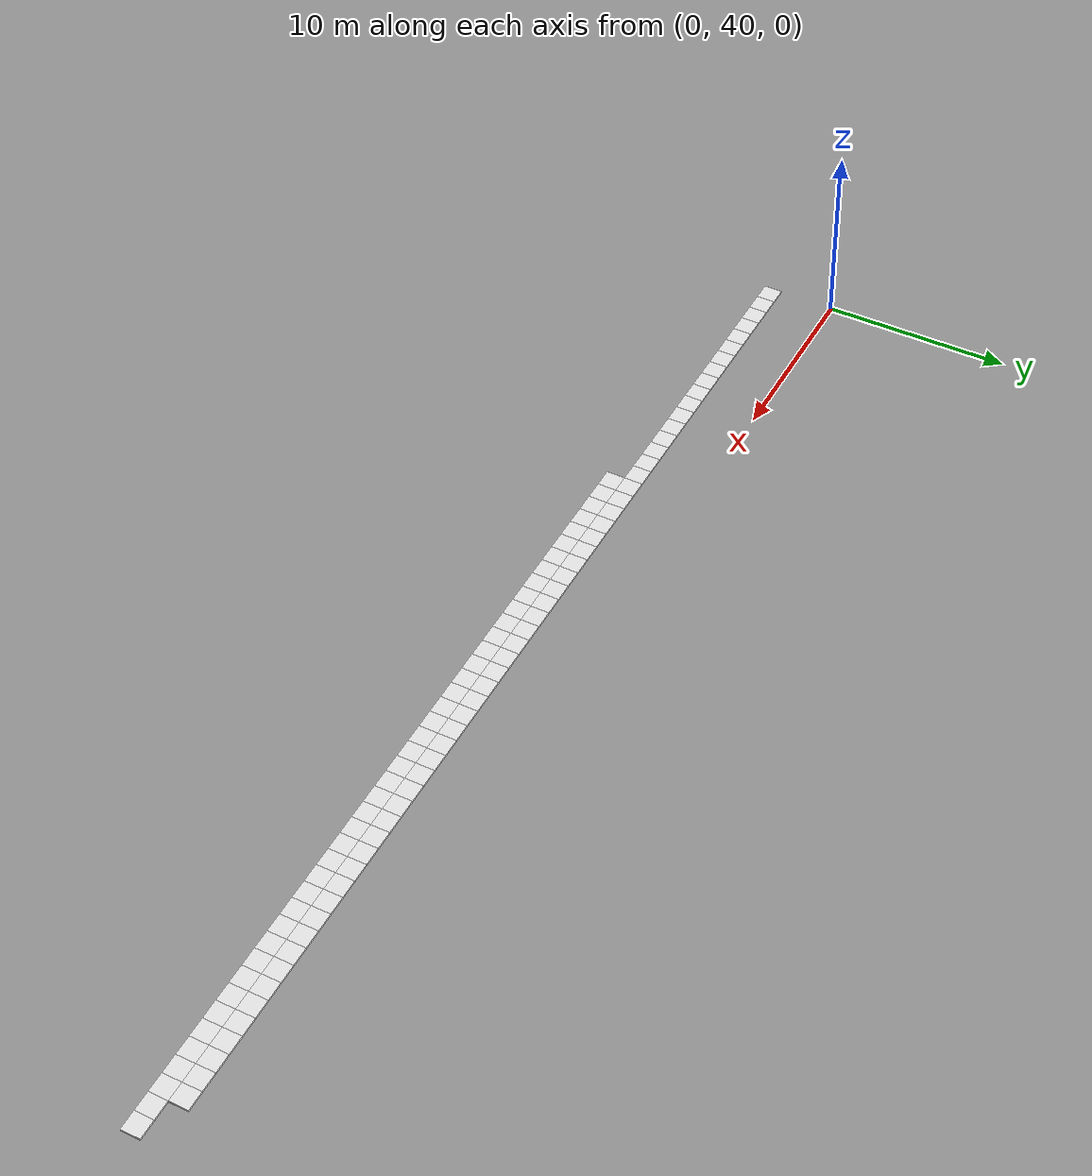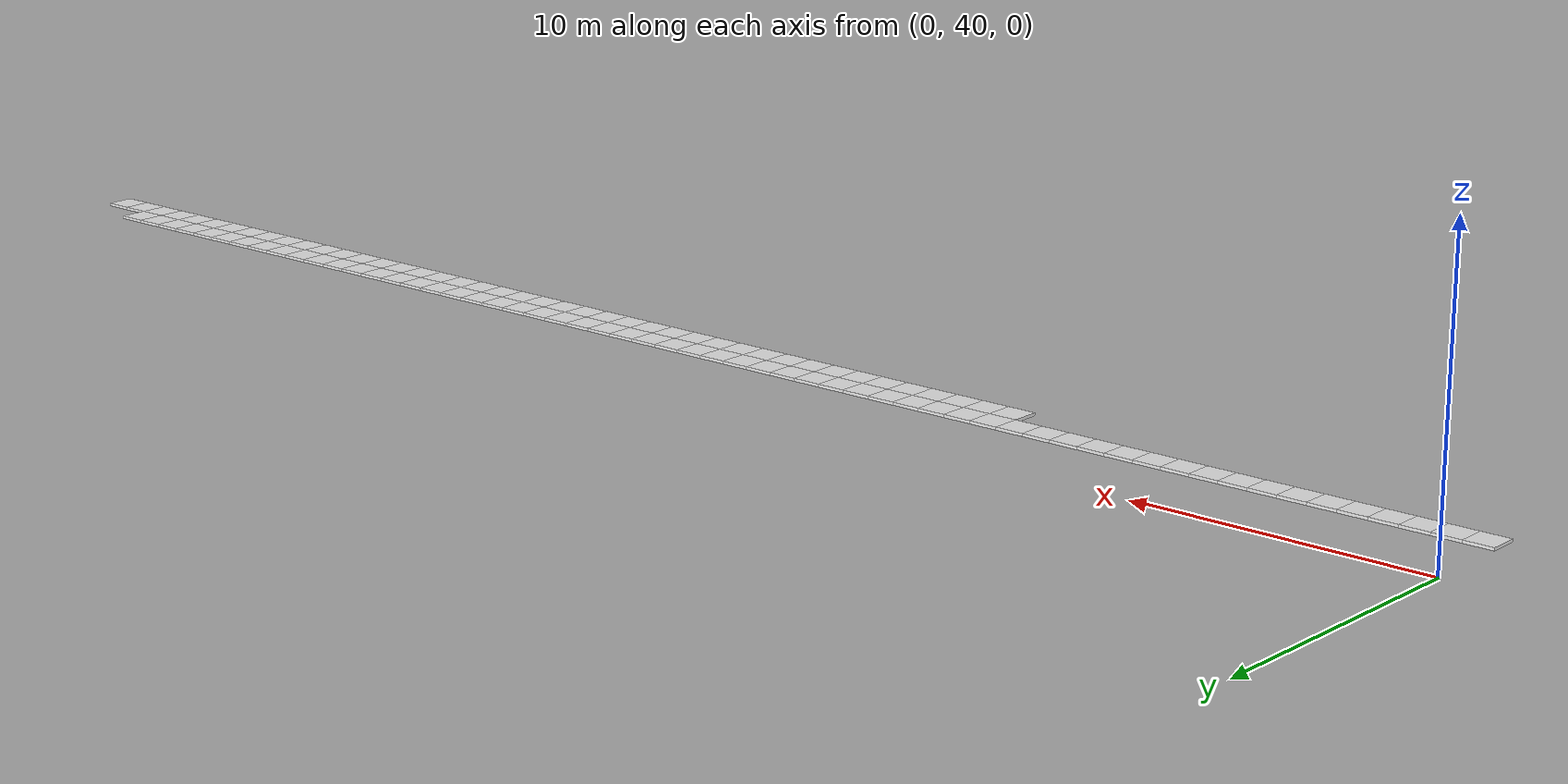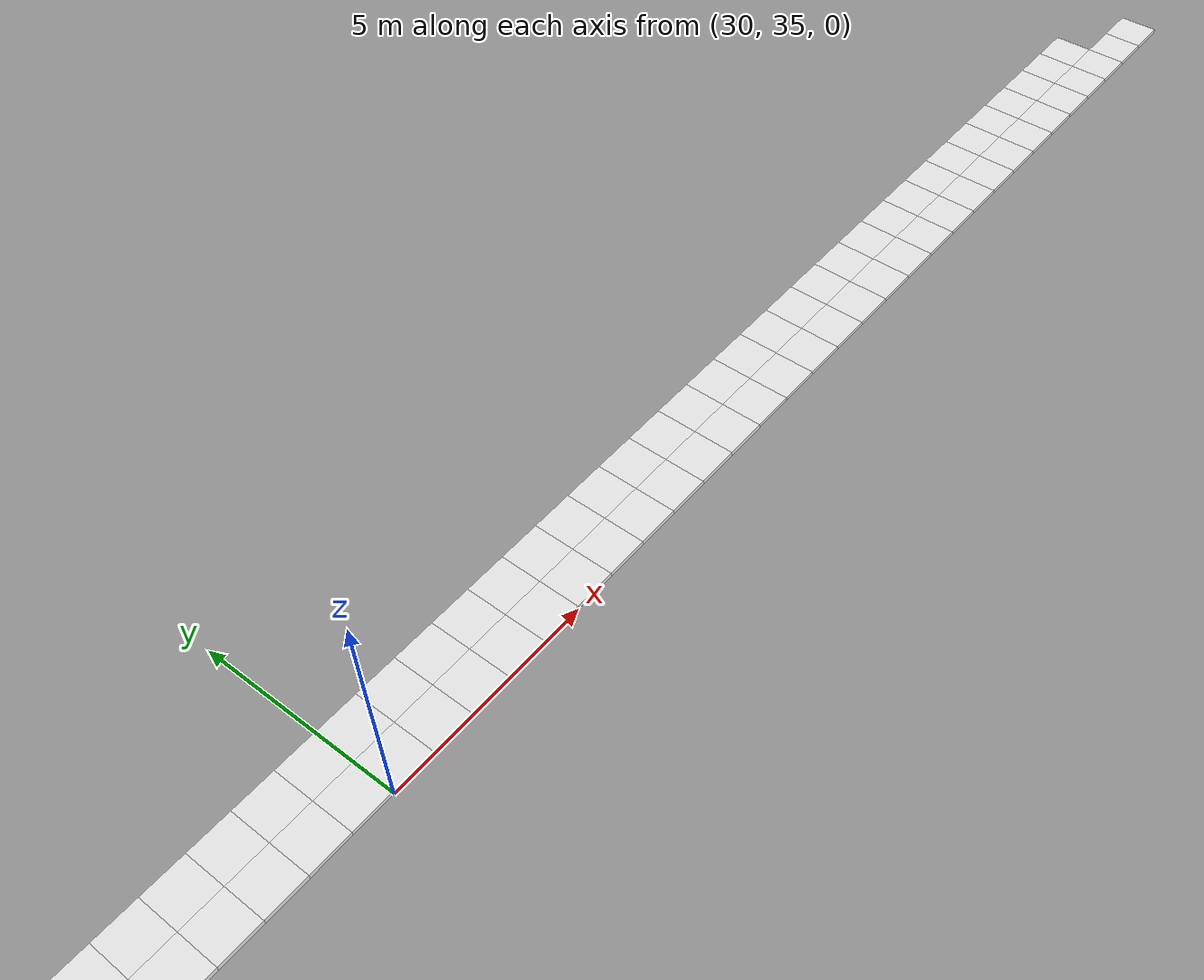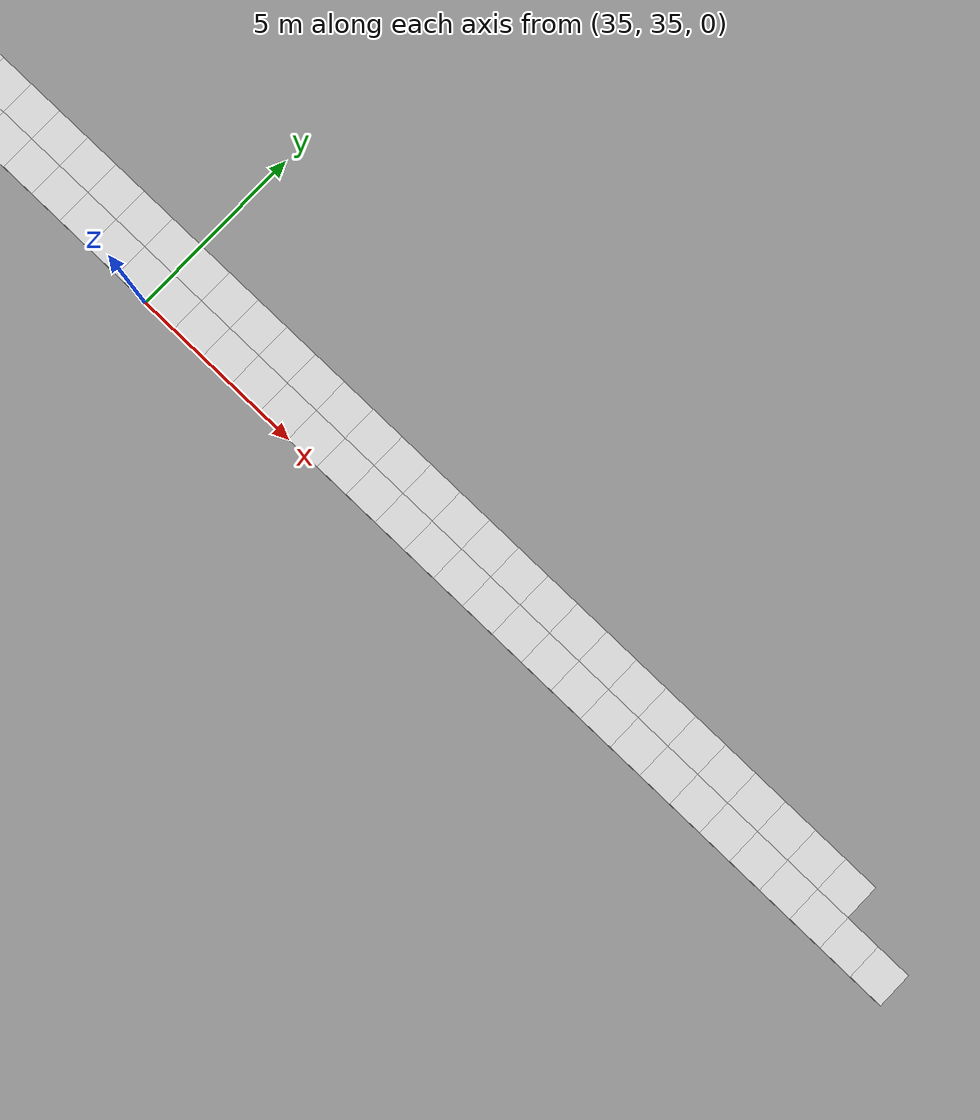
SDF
<sdf version="1.6">
 <world name="grid_world">
  <model name="cell_17_35">
   <static>true</static>
   <link name="link">
    <collision name="collision"><geometry><box><size>1 1 0.1</size></box></geometry></collision>
    <visual name="visual">
     <geometry><box><size>1 1 0.1</size></box></geometry>
     <material>
      <script><uri>file://media/materials/scripts/gazebo.material</uri><name>Gazebo/White</name></script>
     </material>
    </visual>
    <pose>17.5 35.5 0.05 0 0 0</pose>
   </link>
  </model>
  <model name="cell_18_35">
   <static>true</static>
   <link name="link">
    <collision name="collision"><geometry><box><size>1 1 0.1</size></box></geometry></collision>
    <visual name="visual">
     <geometry><box><size>1 1 0.1</size></box></geometry>
     <material>
      <script><uri>file://media/materials/scripts/gazebo.material</uri><name>Gazebo/White</name></script>
     </material>
    </visual>
    <pose>18.5 35.5 0.05 0 0 0</pose>
   </link>
  </model>
  <model name="cell_19_35">
   <static>true</static>
   <link name="link">
    <collision name="collision"><geometry><box><size>1 1 0.1</size></box></geometry></collision>
    <visual name="visual">
     <geometry><box><size>1 1 0.1</size></box></geometry>
     <material>
      <script><uri>file://media/materials/scripts/gazebo.material</uri><name>Gazebo/White</name></script>
     </material>
    </visual>
    <pose>19.5 35.5 0.05 0 0 0</pose>
   </link>
  </model>
  <model name="cell_20_35">
   <static>true</static>
   <link name="link">
    <collision name="collision"><geometry><box><size>1 1 0.1</size></box></geometry></collision>
    <visual name="visual">
     <geometry><box><size>1 1 0.1</size></box></geometry>
     <material>
      <script><uri>file://media/materials/scripts/gazebo.material</uri><name>Gazebo/White</name></script>
     </material>
    </visual>
    <pose>20.5 35.5 0.05 0 0 0</pose>
   </link>
  </model>
  <model name="cell_21_35">
   <static>true</static>
   <link name="link">
    <collision name="collision"><geometry><box><size>1 1 0.1</size></box></geometry></collision>
    <visual name="visual">
     <geometry><box><size>1 1 0.1</size></box></geometry>
     <material>
      <script><uri>file://media/materials/scripts/gazebo.material</uri><name>Gazebo/White</name></script>
     </material>
    </visual>
    <pose>21.5 35.5 0.05 0 0 0</pose>
   </link>
  </model>
  <model name="cell_22_35">
   <static>true</static>
   <link name="link">
    <collision name="collision"><geometry><box><size>1 1 0.1</size></box></geometry></collision>
    <visual name="visual">
     <geometry><box><size>1 1 0.1</size></box></geometry>
     <material>
      <script><uri>file://media/materials/scripts/gazebo.material</uri><name>Gazebo/White</name></script>
     </material>
    </visual>
    <pose>22.5 35.5 0.05 0 0 0</pose>
   </link>
  </model>
  <model name="cell_23_35">
   <static>true</static>
   <link name="link">
    <collision name="collision"><geometry><box><size>1 1 0.1</size></box></geometry></collision>
    <visual name="visual">
     <geometry><box><size>1 1 0.1</size></box></geometry>
     <material>
      <script><uri>file://media/materials/scripts/gazebo.material</uri><name>Gazebo/White</name></script>
     </material>
    </visual>
    <pose>23.5 35.5 0.05 0 0 0</pose>
   </link>
  </model>
  <model name="cell_24_35">
   <static>true</static>
   <link name="link">
    <collision name="collision"><geometry><box><size>1 1 0.1</size></box></geometry></collision>
    <visual name="visual">
     <geometry><box><size>1 1 0.1</size></box></geometry>
     <material>
      <script><uri>file://media/materials/scripts/gazebo.material</uri><name>Gazebo/White</name></script>
     </material>
    </visual>
    <pose>24.5 35.5 0.05 0 0 0</pose>
   </link>
  </model>
  <model name="cell_25_35">
   <static>true</static>
   <link name="link">
    <collision name="collision"><geometry><box><size>1 1 0.1</size></box></geometry></collision>
    <visual name="visual">
     <geometry><box><size>1 1 0.1</size></box></geometry>
     <material>
      <script><uri>file://media/materials/scripts/gazebo.material</uri><name>Gazebo/White</name></script>
     </material>
    </visual>
    <pose>25.5 35.5 0.05 0 0 0</pose>
   </link>
  </model>
  <model name="cell_26_35">
   <static>true</static>
   <link name="link">
    <collision name="collision"><geometry><box><size>1 1 0.1</size></box></geometry></collision>
    <visual name="visual">
     <geometry><box><size>1 1 0.1</size></box></geometry>
     <material>
      <script><uri>file://media/materials/scripts/gazebo.material</uri><name>Gazebo/White</name></script>
     </material>
    </visual>
    <pose>26.5 35.5 0.05 0 0 0</pose>
   </link>
  </model>
  <model name="cell_27_35">
   <static>true</static>
   <link name="link">
    <collision name="collision"><geometry><box><size>1 1 0.1</size></box></geometry></collision>
    <visual name="visual">
     <geometry><box><size>1 1 0.1</size></box></geometry>
     <material>
      <script><uri>file://media/materials/scripts/gazebo.material</uri><name>Gazebo/White</name></script>
     </material>
    </visual>
    <pose>27.5 35.5 0.05 0 0 0</pose>
   </link>
  </model>
  <model name="cell_28_35">
   <static>true</static>
   <link name="link">
    <collision name="collision"><geometry><box><size>1 1 0.1</size></box></geometry></collision>
    <visual name="visual">
     <geometry><box><size>1 1 0.1</size></box></geometry>
     <material>
      <script><uri>file://media/materials/scripts/gazebo.material</uri><name>Gazebo/White</name></script>
     </material>
    </visual>
    <pose>28.5 35.5 0.05 0 0 0</pose>
   </link>
  </model>
  <model name="cell_29_35">
   <static>true</static>
   <link name="link">
    <collision name="collision"><geometry><box><size>1 1 0.1</size></box></geometry></collision>
    <visual name="visual">
     <geometry><box><size>1 1 0.1</size></box></geometry>
     <material>
      <script><uri>file://media/materials/scripts/gazebo.material</uri><name>Gazebo/White</name></script>
     </material>
    </visual>
    <pose>29.5 35.5 0.05 0 0 0</pose>
   </link>
  </model>
  <model name="cell_30_35">
   <static>true</static>
   <link name="link">
    <collision name="collision"><geometry><box><size>1 1 0.1</size></box></geometry></collision>
    <visual name="visual">
     <geometry><box><size>1 1 0.1</size></box></geometry>
     <material>
      <script><uri>file://media/materials/scripts/gazebo.material</uri><name>Gazebo/White</name></script>
     </material>
    </visual>
    <pose>30.5 35.5 0.05 0 0 0</pose>
   </link>
  </model>
  <model name="cell_31_35">
   <static>true</static>
   <link name="link">
    <collision name="collision"><geometry><box><size>1 1 0.1</size></box></geometry></collision>
    <visual name="visual">
     <geometry><box><size>1 1 0.1</size></box></geometry>
     <material>
      <script><uri>file://media/materials/scripts/gazebo.material</uri><name>Gazebo/White</name></script>
     </material>
    </visual>
    <pose>31.5 35.5 0.05 0 0 0</pose>
   </link>
  </model>
  <model name="cell_32_35">
   <static>true</static>
   <link name="link">
    <collision name="collision"><geometry><box><size>1 1 0.1</size></box></geometry></collision>
    <visual name="visual">
     <geometry><box><size>1 1 0.1</size></box></geometry>
     <material>
      <script><uri>file://media/materials/scripts/gazebo.material</uri><name>Gazebo/White</name></script>
     </material>
    </visual>
    <pose>32.5 35.5 0.05 0 0 0</pose>
   </link>
  </model>
  <model name="cell_33_35">
   <static>true</static>
   <link name="link">
    <collision name="collision"><geometry><box><size>1 1 0.1</size></box></geometry></collision>
    <visual name="visual">
     <geometry><box><size>1 1 0.1</size></box></geometry>
     <material>
      <script><uri>file://media/materials/scripts/gazebo.material</uri><name>Gazebo/White</name></script>
     </material>
    </visual>
    <pose>33.5 35.5 0.05 0 0 0</pose>
   </link>
  </model>
  <model name="cell_34_35">
   <static>true</static>
   <link name="link">
    <collision name="collision"><geometry><box><size>1 1 0.1</size></box></geometry></collision>
    <visual name="visual">
     <geometry><box><size>1 1 0.1</size></box></geometry>
     <material>
      <script><uri>file://media/materials/scripts/gazebo.material</uri><name>Gazebo/White</name></script>
     </material>
    </visual>
    <pose>34.5 35.5 0.05 0 0 0</pose>
   </link>
  </model>
  <model name="cell_35_35">
   <static>true</static>
   <link name="link">
    <collision name="collision"><geometry><box><size>1 1 0.1</size></box></geometry></collision>
    <visual name="visual">
     <geometry><box><size>1 1 0.1</size></box></geometry>
     <material>
      <script><uri>file://media/materials/scripts/gazebo.material</uri><name>Gazebo/White</name></script>
     </material>
    </visual>
    <pose>35.5 35.5 0.05 0 0 0</pose>
   </link>
  </model>
  <model name="cell_36_35">
   <static>true</static>
   <link name="link">
    <collision name="collision"><geometry><box><size>1 1 0.1</size></box></geometry></collision>
    <visual name="visual">
     <geometry><box><size>1 1 0.1</size></box></geometry>
     <material>
      <script><uri>file://media/materials/scripts/gazebo.material</uri><name>Gazebo/White</name></script>
     </material>
    </visual>
    <pose>36.5 35.5 0.05 0 0 0</pose>
   </link>
  </model>
  <model name="cell_37_35">
   <static>true</static>
   <link name="link">
    <collision name="collision"><geometry><box><size>1 1 0.1</size></box></geometry></collision>
    <visual name="visual">
     <geometry><box><size>1 1 0.1</size></box></geometry>
     <material>
      <script><uri>file://media/materials/scripts/gazebo.material</uri><name>Gazebo/White</name></script>
     </material>
    </visual>
    <pose>37.5 35.5 0.05 0 0 0</pose>
   </link>
  </model>
  <model name="cell_38_35">
   <static>true</static>
   <link name="link">
    <collision name="collision"><geometry><box><size>1 1 0.1</size></box></geometry></collision>
    <visual name="visual">
     <geometry><box><size>1 1 0.1</size></box></geometry>
     <material>
      <script><uri>file://media/materials/scripts/gazebo.material</uri><name>Gazebo/White</name></script>
     </material>
    </visual>
    <pose>38.5 35.5 0.05 0 0 0</pose>
   </link>
  </model>
  <model name="cell_39_35">
   <static>true</static>
   <link name="link">
    <collision name="collision"><geometry><box><size>1 1 0.1</size></box></geometry></collision>
    <visual name="visual">
     <geometry><box><size>1 1 0.1</size></box></geometry>
     <material>
      <script><uri>file://media/materials/scripts/gazebo.material</uri><name>Gazebo/White</name></script>
     </material>
    </visual>
    <pose>39.5 35.5 0.05 0 0 0</pose>
   </link>
  </model>
  <model name="cell_40_35">
   <static>true</static>
   <link name="link">
    <collision name="collision"><geometry><box><size>1 1 0.1</size></box></geometry></collision>
    <visual name="visual">
     <geometry><box><size>1 1 0.1</size></box></geometry>
     <material>
      <script><uri>file://media/materials/scripts/gazebo.material</uri><name>Gazebo/White</name></script>
     </material>
    </visual>
    <pose>40.5 35.5 0.05 0 0 0</pose>
   </link>
  </model>
  <model name="cell_41_35">
   <static>true</static>
   <link name="link">
    <collision name="collision"><geometry><box><size>1 1 0.1</size></box></geometry></collision>
    <visual name="visual">
     <geometry><box><size>1 1 0.1</size></box></geometry>
     <material>
      <script><uri>file://media/materials/scripts/gazebo.material</uri><name>Gazebo/White</name></script>
     </material>
    </visual>
    <pose>41.5 35.5 0.05 0 0 0</pose>
   </link>
  </model>
  <model name="cell_42_35">
   <static>true</static>
   <link name="link">
    <collision name="collision"><geometry><box><size>1 1 0.1</size></box></geometry></collision>
    <visual name="visual">
     <geometry><box><size>1 1 0.1</size></box></geometry>
     <material>
      <script><uri>file://media/materials/scripts/gazebo.material</uri><name>Gazebo/White</name></script>
     </material>
    </visual>
    <pose>42.5 35.5 0.05 0 0 0</pose>
   </link>
  </model>
  <model name="cell_43_35">
   <static>true</static>
   <link name="link">
    <collision name="collision"><geometry><box><size>1 1 0.1</size></box></geometry></collision>
    <visual name="visual">
     <geometry><box><size>1 1 0.1</size></box></geometry>
     <material>
      <script><uri>file://media/materials/scripts/gazebo.material</uri><name>Gazebo/White</name></script>
     </material>
    </visual>
    <pose>43.5 35.5 0.05 0 0 0</pose>
   </link>
  </model>
  <model name="cell_44_35">
   <static>true</static>
   <link name="link">
    <collision name="collision"><geometry><box><size>1 1 0.1</size></box></geometry></collision>
    <visual name="visual">
     <geometry><box><size>1 1 0.1</size></box></geometry>
     <material>
      <script><uri>file://media/materials/scripts/gazebo.material</uri><name>Gazebo/White</name></script>
     </material>
    </visual>
    <pose>44.5 35.5 0.05 0 0 0</pose>
   </link>
  </model>
  <model name="cell_45_35">
   <static>true</static>
   <link name="link">
    <collision name="collision"><geometry><box><size>1 1 0.1</size></box></geometry></collision>
    <visual name="visual">
     <geometry><box><size>1 1 0.1</size></box></geometry>
     <material>
      <script><uri>file://media/materials/scripts/gazebo.material</uri><name>Gazebo/White</name></script>
     </material>
    </visual>
    <pose>45.5 35.5 0.05 0 0 0</pose>
   </link>
  </model>
  <model name="cell_46_35">
   <static>true</static>
   <link name="link">
    <collision name="collision"><geometry><box><size>1 1 0.1</size></box></geometry></collision>
    <visual name="visual">
     <geometry><box><size>1 1 0.1</size></box></geometry>
     <material>
      <script><uri>file://media/materials/scripts/gazebo.material</uri><name>Gazebo/White</name></script>
     </material>
    </visual>
    <pose>46.5 35.5 0.05 0 0 0</pose>
   </link>
  </model>
  <model name="cell_47_35">
   <static>true</static>
   <link name="link">
    <collision name="collision"><geometry><box><size>1 1 0.1</size></box></geometry></collision>
    <visual name="visual">
     <geometry><box><size>1 1 0.1</size></box></geometry>
     <material>
      <script><uri>file://media/materials/scripts/gazebo.material</uri><name>Gazebo/White</name></script>
     </material>
    </visual>
    <pose>47.5 35.5 0.05 0 0 0</pose>
   </link>
  </model>
  <model name="cell_48_35">
   <static>true</static>
   <link name="link">
    <collision name="collision"><geometry><box><size>1 1 0.1</size></box></geometry></collision>
    <visual name="visual">
     <geometry><box><size>1 1 0.1</size></box></geometry>
     <material>
      <script><uri>file://media/materials/scripts/gazebo.material</uri><name>Gazebo/White</name></script>
     </material>
    </visual>
    <pose>48.5 35.5 0.05 0 0 0</pose>
   </link>
  </model>
  <model name="cell_49_35">
   <static>true</static>
   <link name="link">
    <collision name="collision"><geometry><box><size>1 1 0.1</size></box></geometry></collision>
    <visual name="visual">
     <geometry><box><size>1 1 0.1</size></box></geometry>
     <material>
      <script><uri>file://media/materials/scripts/gazebo.material</uri><name>Gazebo/White</name></script>
     </material>
    </visual>
    <pose>49.5 35.5 0.05 0 0 0</pose>
   </link>
  </model>
  <model name="cell_50_35">
   <static>true</static>
   <link name="link">
    <collision name="collision"><geometry><box><size>1 1 0.1</size></box></geometry></collision>
    <visual name="visual">
     <geometry><box><size>1 1 0.1</size></box></geometry>
     <material>
      <script><uri>file://media/materials/scripts/gazebo.material</uri><name>Gazebo/White</name></script>
     </material>
    </visual>
    <pose>50.5 35.5 0.05 0 0 0</pose>
   </link>
  </model>
  <model name="cell_51_35">
   <static>true</static>
   <link name="link">
    <collision name="collision"><geometry><box><size>1 1 0.1</size></box></geometry></collision>
    <visual name="visual">
     <geometry><box><size>1 1 0.1</size></box></geometry>
     <material>
      <script><uri>file://media/materials/scripts/gazebo.material</uri><name>Gazebo/White</name></script>
     </material>
    </visual>
    <pose>51.5 35.5 0.05 0 0 0</pose>
   </link>
  </model>
  <model name="cell_52_35">
   <static>true</static>
   <link name="link">
    <collision name="collision"><geometry><box><size>1 1 0.1</size></box></geometry></collision>
    <visual name="visual">
     <geometry><box><size>1 1 0.1</size></box></geometry>
     <material>
      <script><uri>file://media/materials/scripts/gazebo.material</uri><name>Gazebo/White</name></script>
     </material>
    </visual>
    <pose>52.5 35.5 0.05 0 0 0</pose>
   </link>
  </model>
  <model name="cell_53_35">
   <static>true</static>
   <link name="link">
    <collision name="collision"><geometry><box><size>1 1 0.1</size></box></geometry></collision>
    <visual name="visual">
     <geometry><box><size>1 1 0.1</size></box></geometry>
     <material>
      <script><uri>file://media/materials/scripts/gazebo.material</uri><name>Gazebo/White</name></script>
     </material>
    </visual>
    <pose>53.5 35.5 0.05 0 0 0</pose>
   </link>
  </model>
  <model name="cell_54_35">
   <static>true</static>
   <link name="link">
    <collision name="collision"><geometry><box><size>1 1 0.1</size></box></geometry></collision>
    <visual name="visual">
     <geometry><box><size>1 1 0.1</size></box></geometry>
     <material>
      <script><uri>file://media/materials/scripts/gazebo.material</uri><name>Gazebo/White</name></script>
     </material>
    </visual>
    <pose>54.5 35.5 0.05 0 0 0</pose>
   </link>
  </model>
  <model name="cell_55_35">
   <static>true</static>
   <link name="link">
    <collision name="collision"><geometry><box><size>1 1 0.1</size></box></geometry></collision>
    <visual name="visual">
     <geometry><box><size>1 1 0.1</size></box></geometry>
     <material>
      <script><uri>file://media/materials/scripts/gazebo.material</uri><name>Gazebo/White</name></script>
     </material>
    </visual>
    <pose>55.5 35.5 0.05 0 0 0</pose>
   </link>
  </model>
  <model name="cell_56_35">
   <static>true</static>
   <link name="link">
    <collision name="collision"><geometry><box><size>1 1 0.1</size></box></geometry></collision>
    <visual name="visual">
     <geometry><box><size>1 1 0.1</size></box></geometry>
     <material>
      <script><uri>file://media/materials/scripts/gazebo.material</uri><name>Gazebo/White</name></script>
     </material>
    </visual>
    <pose>56.5 35.5 0.05 0 0 0</pose>
   </link>
  </model>
  <model name="cell_57_35">
   <static>true</static>
   <link name="link">
    <collision name="collision"><geometry><box><size>1 1 0.1</size></box></geometry></collision>
    <visual name="visual">
     <geometry><box><size>1 1 0.1</size></box></geometry>
     <material>
      <script><uri>file://media/materials/scripts/gazebo.material</uri><name>Gazebo/White</name></script>
     </material>
    </visual>
    <pose>57.5 35.5 0.05 0 0 0</pose>
   </link>
  </model>
  <model name="cell_58_35">
   <static>true</static>
   <link name="link">
    <collision name="collision"><geometry><box><size>1 1 0.1</size></box></geometry></collision>
    <visual name="visual">
     <geometry><box><size>1 1 0.1</size></box></geometry>
     <material>
      <script><uri>file://media/materials/scripts/gazebo.material</uri><name>Gazebo/White</name></script>
     </material>
    </visual>
    <pose>58.5 35.5 0.05 0 0 0</pose>
   </link>
  </model>
  <model name="cell_59_35">
   <static>true</static>
   <link name="link">
    <collision name="collision"><geometry><box><size>1 1 0.1</size></box></geometry></collision>
    <visual name="visual">
     <geometry><box><size>1 1 0.1</size></box></geometry>
     <material>
      <script><uri>file://media/materials/scripts/gazebo.material</uri><name>Gazebo/White</name></script>
     </material>
    </visual>
    <pose>59.5 35.5 0.05 0 0 0</pose>
   </link>
  </model>
  <model name="cell_0_36">
   <static>true</static>
   <link name="link">
    <collision name="collision"><geometry><box><size>1 1 0.1</size></box></geometry></collision>
    <visual name="visual">
     <geometry><box><size>1 1 0.1</size></box></geometry>
     <material>
      <script><uri>file://media/materials/scripts/gazebo.material</uri><name>Gazebo/White</name></script>
     </material>
    </visual>
    <pose>0.5 36.5 0.05 0 0 0</pose>
   </link>
  </model>
  <model name="cell_1_36">
   <static>true</static>
   <link name="link">
    <collision name="collision"><geometry><box><size>1 1 0.1</size></box></geometry></collision>
    <visual name="visual">
     <geometry><box><size>1 1 0.1</size></box></geometry>
     <material>
      <script><uri>file://media/materials/scripts/gazebo.material</uri><name>Gazebo/White</name></script>
     </material>
    </visual>
    <pose>1.5 36.5 0.05 0 0 0</pose>
   </link>
  </model>
  <model name="cell_2_36">
   <static>true</static>
   <link name="link">
    <collision name="collision"><geometry><box><size>1 1 0.1</size></box></geometry></collision>
    <visual name="visual">
     <geometry><box><size>1 1 0.1</size></box></geometry>
     <material>
      <script><uri>file://media/materials/scripts/gazebo.material</uri><name>Gazebo/White</name></script>
     </material>
    </visual>
    <pose>2.5 36.5 0.05 0 0 0</pose>
   </link>
  </model>
  <model name="cell_3_36">
   <static>true</static>
   <link name="link">
    <collision name="collision"><geometry><box><size>1 1 0.1</size></box></geometry></collision>
    <visual name="visual">
     <geometry><box><size>1 1 0.1</size></box></geometry>
     <material>
      <script><uri>file://media/materials/scripts/gazebo.material</uri><name>Gazebo/White</name></script>
     </material>
    </visual>
    <pose>3.5 36.5 0.05 0 0 0</pose>
   </link>
  </model>
  <model name="cell_4_36">
   <static>true</static>
   <link name="link">
    <collision name="collision"><geometry><box><size>1 1 0.1</size></box></geometry></collision>
    <visual name="visual">
     <geometry><box><size>1 1 0.1</size></box></geometry>
     <material>
      <script><uri>file://media/materials/scripts/gazebo.material</uri><name>Gazebo/White</name></script>
     </material>
    </visual>
    <pose>4.5 36.5 0.05 0 0 0</pose>
   </link>
  </model>
  <model name="cell_5_36">
   <static>true</static>
   <link name="link">
    <collision name="collision"><geometry><box><size>1 1 0.1</size></box></geometry></collision>
    <visual name="visual">
     <geometry><box><size>1 1 0.1</size></box></geometry>
     <material>
      <script><uri>file://media/materials/scripts/gazebo.material</uri><name>Gazebo/White</name></script>
     </material>
    </visual>
    <pose>5.5 36.5 0.05 0 0 0</pose>
   </link>
  </model>
  <model name="cell_6_36">
   <static>true</static>
   <link name="link">
    <collision name="collision"><geometry><box><size>1 1 0.1</size></box></geometry></collision>
    <visual name="visual">
     <geometry><box><size>1 1 0.1</size></box></geometry>
     <material>
      <script><uri>file://media/materials/scripts/gazebo.material</uri><name>Gazebo/White</name></script>
     </material>
    </visual>
    <pose>6.5 36.5 0.05 0 0 0</pose>
   </link>
  </model>
  <model name="cell_7_36">
   <static>true</static>
   <link name="link">
    <collision name="collision"><geometry><box><size>1 1 0.1</size></box></geometry></collision>
    <visual name="visual">
     <geometry><box><size>1 1 0.1</size></box></geometry>
     <material>
      <script><uri>file://media/materials/scripts/gazebo.material</uri><name>Gazebo/White</name></script>
     </material>
    </visual>
    <pose>7.5 36.5 0.05 0 0 0</pose>
   </link>
  </model>
  <model name="cell_8_36">
   <static>true</static>
   <link name="link">
    <collision name="collision"><geometry><box><size>1 1 0.1</size></box></geometry></collision>
    <visual name="visual">
     <geometry><box><size>1 1 0.1</size></box></geometry>
     <material>
      <script><uri>file://media/materials/scripts/gazebo.material</uri><name>Gazebo/White</name></script>
     </material>
    </visual>
    <pose>8.5 36.5 0.05 0 0 0</pose>
   </link>
  </model>
  <model name="cell_9_36">
   <static>true</static>
   <link name="link">
    <collision name="collision"><geometry><box><size>1 1 0.1</size></box></geometry></collision>
    <visual name="visual">
     <geometry><box><size>1 1 0.1</size></box></geometry>
     <material>
      <script><uri>file://media/materials/scripts/gazebo.material</uri><name>Gazebo/White</name></script>
     </material>
    </visual>
    <pose>9.5 36.5 0.05 0 0 0</pose>
   </link>
  </model>
  <model name="cell_10_36">
   <static>true</static>
   <link name="link">
    <collision name="collision"><geometry><box><size>1 1 0.1</size></box></geometry></collision>
    <visual name="visual">
     <geometry><box><size>1 1 0.1</size></box></geometry>
     <material>
      <script><uri>file://media/materials/scripts/gazebo.material</uri><name>Gazebo/White</name></script>
     </material>
    </visual>
    <pose>10.5 36.5 0.05 0 0 0</pose>
   </link>
  </model>
  <model name="cell_11_36">
   <static>true</static>
   <link name="link">
    <collision name="collision"><geometry><box><size>1 1 0.1</size></box></geometry></collision>
    <visual name="visual">
     <geometry><box><size>1 1 0.1</size></box></geometry>
     <material>
      <script><uri>file://media/materials/scripts/gazebo.material</uri><name>Gazebo/White</name></script>
     </material>
    </visual>
    <pose>11.5 36.5 0.05 0 0 0</pose>
   </link>
  </model>
  <model name="cell_12_36">
   <static>true</static>
   <link name="link">
    <collision name="collision"><geometry><box><size>1 1 0.1</size></box></geometry></collision>
    <visual name="visual">
     <geometry><box><size>1 1 0.1</size></box></geometry>
     <material>
      <script><uri>file://media/materials/scripts/gazebo.material</uri><name>Gazebo/White</name></script>
     </material>
    </visual>
    <pose>12.5 36.5 0.05 0 0 0</pose>
   </link>
  </model>
  <model name="cell_13_36">
   <static>true</static>
   <link name="link">
    <collision name="collision"><geometry><box><size>1 1 0.1</size></box></geometry></collision>
    <visual name="visual">
     <geometry><box><size>1 1 0.1</size></box></geometry>
     <material>
      <script><uri>file://media/materials/scripts/gazebo.material</uri><name>Gazebo/White</name></script>
     </material>
    </visual>
    <pose>13.5 36.5 0.05 0 0 0</pose>
   </link>
  </model>
  <model name="cell_14_36">
   <static>true</static>
   <link name="link">
    <collision name="collision"><geometry><box><size>1 1 0.1</size></box></geometry></collision>
    <visual name="visual">
     <geometry><box><size>1 1 0.1</size></box></geometry>
     <material>
      <script><uri>file://media/materials/scripts/gazebo.material</uri><name>Gazebo/White</name></script>
     </material>
    </visual>
    <pose>14.5 36.5 0.05 0 0 0</pose>
   </link>
  </model>
  <model name="cell_15_36">
   <static>true</static>
   <link name="link">
    <collision name="collision"><geometry><box><size>1 1 0.1</size></box></geometry></collision>
    <visual name="visual">
     <geometry><box><size>1 1 0.1</size></box></geometry>
     <material>
      <script><uri>file://media/materials/scripts/gazebo.material</uri><name>Gazebo/White</name></script>
     </material>
    </visual>
    <pose>15.5 36.5 0.05 0 0 0</pose>
   </link>
  </model>
  <model name="cell_16_36">
   <static>true</static>
   <link name="link">
    <collision name="collision"><geometry><box><size>1 1 0.1</size></box></geometry></collision>
    <visual name="visual">
     <geometry><box><size>1 1 0.1</size></box></geometry>
     <material>
      <script><uri>file://media/materials/scripts/gazebo.material</uri><name>Gazebo/White</name></script>
     </material>
    </visual>
    <pose>16.5 36.5 0.05 0 0 0</pose>
   </link>
  </model>
  <model name="cell_17_36">
   <static>true</static>
   <link name="link">
    <collision name="collision"><geometry><box><size>1 1 0.1</size></box></geometry></collision>
    <visual name="visual">
     <geometry><box><size>1 1 0.1</size></box></geometry>
     <material>
      <script><uri>file://media/materials/scripts/gazebo.material</uri><name>Gazebo/White</name></script>
     </material>
    </visual>
    <pose>17.5 36.5 0.05 0 0 0</pose>
   </link>
  </model>
  <model name="cell_18_36">
   <static>true</static>
   <link name="link">
    <collision name="collision"><geometry><box><size>1 1 0.1</size></box></geometry></collision>
    <visual name="visual">
     <geometry><box><size>1 1 0.1</size></box></geometry>
     <material>
      <script><uri>file://media/materials/scripts/gazebo.material</uri><name>Gazebo/White</name></script>
     </material>
    </visual>
    <pose>18.5 36.5 0.05 0 0 0</pose>
   </link>
  </model>
  <model name="cell_19_36">
   <static>true</static>
   <link name="link">
    <collision name="collision"><geometry><box><size>1 1 0.1</size></box></geometry></collision>
    <visual name="visual">
     <geometry><box><size>1 1 0.1</size></box></geometry>
     <material>
      <script><uri>file://media/materials/scripts/gazebo.material</uri><name>Gazebo/White</name></script>
     </material>
    </visual>
    <pose>19.5 36.5 0.05 0 0 0</pose>
   </link>
  </model>
  <model name="cell_20_36">
   <static>true</static>
   <link name="link">
    <collision name="collision"><geometry><box><size>1 1 0.1</size></box></geometry></collision>
    <visual name="visual">
     <geometry><box><size>1 1 0.1</size></box></geometry>
     <material>
      <script><uri>file://media/materials/scripts/gazebo.material</uri><name>Gazebo/White</name></script>
     </material>
    </visual>
    <pose>20.5 36.5 0.05 0 0 0</pose>
   </link>
  </model>
  <model name="cell_21_36">
   <static>true</static>
   <link name="link">
    <collision name="collision"><geometry><box><size>1 1 0.1</size></box></geometry></collision>
    <visual name="visual">
     <geometry><box><size>1 1 0.1</size></box></geometry>
     <material>
      <script><uri>file://media/materials/scripts/gazebo.material</uri><name>Gazebo/White</name></script>
     </material>
    </visual>
    <pose>21.5 36.5 0.05 0 0 0</pose>
   </link>
  </model>
  <model name="cell_22_36">
   <static>true</static>
   <link name="link">
    <collision name="collision"><geometry><box><size>1 1 0.1</size></box></geometry></collision>
    <visual name="visual">
     <geometry><box><size>1 1 0.1</size></box></geometry>
     <material>
      <script><uri>file://media/materials/scripts/gazebo.material</uri><name>Gazebo/White</name></script>
     </material>
    </visual>
    <pose>22.5 36.5 0.05 0 0 0</pose>
   </link>
  </model>
  <model name="cell_23_36">
   <static>true</static>
   <link name="link">
    <collision name="collision"><geometry><box><size>1 1 0.1</size></box></geometry></collision>
    <visual name="visual">
     <geometry><box><size>1 1 0.1</size></box></geometry>
     <material>
      <script><uri>file://media/materials/scripts/gazebo.material</uri><name>Gazebo/White</name></script>
     </material>
    </visual>
    <pose>23.5 36.5 0.05 0 0 0</pose>
   </link>
  </model>
  <model name="cell_24_36">
   <static>true</static>
   <link name="link">
    <collision name="collision"><geometry><box><size>1 1 0.1</size></box></geometry></collision>
    <visual name="visual">
     <geometry><box><size>1 1 0.1</size></box></geometry>
     <material>
      <script><uri>file://media/materials/scripts/gazebo.material</uri><name>Gazebo/White</name></script>
     </material>
    </visual>
    <pose>24.5 36.5 0.05 0 0 0</pose>
   </link>
  </model>
  <model name="cell_25_36">
   <static>true</static>
   <link name="link">
    <collision name="collision"><geometry><box><size>1 1 0.1</size></box></geometry></collision>
    <visual name="visual">
     <geometry><box><size>1 1 0.1</size></box></geometry>
     <material>
      <script><uri>file://media/materials/scripts/gazebo.material</uri><name>Gazebo/White</name></script>
     </material>
    </visual>
    <pose>25.5 36.5 0.05 0 0 0</pose>
   </link>
  </model>
  <model name="cell_26_36">
   <static>true</static>
   <link name="link">
    <collision name="collision"><geometry><box><size>1 1 0.1</size></box></geometry></collision>
    <visual name="visual">
     <geometry><box><size>1 1 0.1</size></box></geometry>
     <material>
      <script><uri>file://media/materials/scripts/gazebo.material</uri><name>Gazebo/White</name></script>
     </material>
    </visual>
    <pose>26.5 36.5 0.05 0 0 0</pose>
   </link>
  </model>
  <model name="cell_27_36">
   <static>true</static>
   <link name="link">
    <collision name="collision"><geometry><box><size>1 1 0.1</size></box></geometry></collision>
    <visual name="visual">
     <geometry><box><size>1 1 0.1</size></box></geometry>
     <material>
      <script><uri>file://media/materials/scripts/gazebo.material</uri><name>Gazebo/White</name></script>
     </material>
    </visual>
    <pose>27.5 36.5 0.05 0 0 0</pose>
   </link>
  </model>
  <model name="cell_28_36">
   <static>true</static>
   <link name="link">
    <collision name="collision"><geometry><box><size>1 1 0.1</size></box></geometry></collision>
    <visual name="visual">
     <geometry><box><size>1 1 0.1</size></box></geometry>
     <material>
      <script><uri>file://media/materials/scripts/gazebo.material</uri><name>Gazebo/White</name></script>
     </material>
    </visual>
    <pose>28.5 36.5 0.05 0 0 0</pose>
   </link>
  </model>
  <model name="cell_29_36">
   <static>true</static>
   <link name="link">
    <collision name="collision"><geometry><box><size>1 1 0.1</size></box></geometry></collision>
    <visual name="visual">
     <geometry><box><size>1 1 0.1</size></box></geometry>
     <material>
      <script><uri>file://media/materials/scripts/gazebo.material</uri><name>Gazebo/White</name></script>
     </material>
    </visual>
    <pose>29.5 36.5 0.05 0 0 0</pose>
   </link>
  </model>
  <model name="cell_30_36">
   <static>true</static>
   <link name="link">
    <collision name="collision"><geometry><box><size>1 1 0.1</size></box></geometry></collision>
    <visual name="visual">
     <geometry><box><size>1 1 0.1</size></box></geometry>
     <material>
      <script><uri>file://media/materials/scripts/gazebo.material</uri><name>Gazebo/White</name></script>
     </material>
    </visual>
    <pose>30.5 36.5 0.05 0 0 0</pose>
   </link>
  </model>
  <model name="cell_31_36">
   <static>true</static>
   <link name="link">
    <collision name="collision"><geometry><box><size>1 1 0.1</size></box></geometry></collision>
    <visual name="visual">
     <geometry><box><size>1 1 0.1</size></box></geometry>
     <material>
      <script><uri>file://media/materials/scripts/gazebo.material</uri><name>Gazebo/White</name></script>
     </material>
    </visual>
    <pose>31.5 36.5 0.05 0 0 0</pose>
   </link>
  </model>
  <model name="cell_32_36">
   <static>true</static>
   <link name="link">
    <collision name="collision"><geometry><box><size>1 1 0.1</size></box></geometry></collision>
    <visual name="visual">
     <geometry><box><size>1 1 0.1</size></box></geometry>
     <material>
      <script><uri>file://media/materials/scripts/gazebo.material</uri><name>Gazebo/White</name></script>
     </material>
    </visual>
    <pose>32.5 36.5 0.05 0 0 0</pose>
   </link>
  </model>
  <model name="cell_33_36">
   <static>true</static>
   <link name="link">
    <collision name="collision"><geometry><box><size>1 1 0.1</size></box></geometry></collision>
    <visual name="visual">
     <geometry><box><size>1 1 0.1</size></box></geometry>
     <material>
      <script><uri>file://media/materials/scripts/gazebo.material</uri><name>Gazebo/White</name></script>
     </material>
    </visual>
    <pose>33.5 36.5 0.05 0 0 0</pose>
   </link>
  </model>
  <model name="cell_34_36">
   <static>true</static>
   <link name="link">
    <collision name="collision"><geometry><box><size>1 1 0.1</size></box></geometry></collision>
    <visual name="visual">
     <geometry><box><size>1 1 0.1</size></box></geometry>
     <material>
      <script><uri>file://media/materials/scripts/gazebo.material</uri><name>Gazebo/White</name></script>
     </material>
    </visual>
    <pose>34.5 36.5 0.05 0 0 0</pose>
   </link>
  </model>
  <model name="cell_35_36">
   <static>true</static>
   <link name="link">
    <collision name="collision"><geometry><box><size>1 1 0.1</size></box></geometry></collision>
    <visual name="visual">
     <geometry><box><size>1 1 0.1</size></box></geometry>
     <material>
      <script><uri>file://media/materials/scripts/gazebo.material</uri><name>Gazebo/White</name></script>
     </material>
    </visual>
    <pose>35.5 36.5 0.05 0 0 0</pose>
   </link>
  </model>
  <model name="cell_36_36">
   <static>true</static>
   <link name="link">
    <collision name="collision"><geometry><box><size>1 1 0.1</size></box></geometry></collision>
    <visual name="visual">
     <geometry><box><size>1 1 0.1</size></box></geometry>
     <material>
      <script><uri>file://media/materials/scripts/gazebo.material</uri><name>Gazebo/White</name></script>
     </material>
    </visual>
    <pose>36.5 36.5 0.05 0 0 0</pose>
   </link>
  </model>
  <model name="cell_37_36">
   <static>true</static>
   <link name="link">
    <collision name="collision"><geometry><box><size>1 1 0.1</size></box></geometry></collision>
    <visual name="visual">
     <geometry><box><size>1 1 0.1</size></box></geometry>
     <material>
      <script><uri>file://media/materials/scripts/gazebo.material</uri><name>Gazebo/White</name></script>
     </material>
    </visual>
    <pose>37.5 36.5 0.05 0 0 0</pose>
   </link>
  </model>
  <model name="cell_38_36">
   <static>true</static>
   <link name="link">
    <collision name="collision"><geometry><box><size>1 1 0.1</size></box></geometry></collision>
    <visual name="visual">
     <geometry><box><size>1 1 0.1</size></box></geometry>
     <material>
      <script><uri>file://media/materials/scripts/gazebo.material</uri><name>Gazebo/White</name></script>
     </material>
    </visual>
    <pose>38.5 36.5 0.05 0 0 0</pose>
   </link>
  </model>
  <model name="cell_39_36">
   <static>true</static>
   <link name="link">
    <collision name="collision"><geometry><box><size>1 1 0.1</size></box></geometry></collision>
    <visual name="visual">
     <geometry><box><size>1 1 0.1</size></box></geometry>
     <material>
      <script><uri>file://media/materials/scripts/gazebo.material</uri><name>Gazebo/White</name></script>
     </material>
    </visual>
    <pose>39.5 36.5 0.05 0 0 0</pose>
   </link>
  </model>
  <model name="cell_40_36">
   <static>true</static>
   <link name="link">
    <collision name="collision"><geometry><box><size>1 1 0.1</size></box></geometry></collision>
    <visual name="visual">
     <geometry><box><size>1 1 0.1</size></box></geometry>
     <material>
      <script><uri>file://media/materials/scripts/gazebo.material</uri><name>Gazebo/White</name></script>
     </material>
    </visual>
    <pose>40.5 36.5 0.05 0 0 0</pose>
   </link>
  </model>
  <model name="cell_41_36">
   <static>true</static>
   <link name="link">
    <collision name="collision"><geometry><box><size>1 1 0.1</size></box></geometry></collision>
    <visual name="visual">
     <geometry><box><size>1 1 0.1</size></box></geometry>
     <material>
      <script><uri>file://media/materials/scripts/gazebo.material</uri><name>Gazebo/White</name></script>
     </material>
    </visual>
    <pose>41.5 36.5 0.05 0 0 0</pose>
   </link>
  </model>
  <model name="cell_42_36">
   <static>true</static>
   <link name="link">
    <collision name="collision"><geometry><box><size>1 1 0.1</size></box></geometry></collision>
    <visual name="visual">
     <geometry><box><size>1 1 0.1</size></box></geometry>
     <material>
      <script><uri>file://media/materials/scripts/gazebo.material</uri><name>Gazebo/White</name></script>
     </material>
    </visual>
    <pose>42.5 36.5 0.05 0 0 0</pose>
   </link>
  </model>
  <model name="cell_43_36">
   <static>true</static>
   <link name="link">
    <collision name="collision"><geometry><box><size>1 1 0.1</size></box></geometry></collision>
    <visual name="visual">
     <geometry><box><size>1 1 0.1</size></box></geometry>
     <material>
      <script><uri>file://media/materials/scripts/gazebo.material</uri><name>Gazebo/White</name></script>
     </material>
    </visual>
    <pose>43.5 36.5 0.05 0 0 0</pose>
   </link>
  </model>
  <model name="cell_44_36">
   <static>true</static>
   <link name="link">
    <collision name="collision"><geometry><box><size>1 1 0.1</size></box></geometry></collision>
    <visual name="visual">
     <geometry><box><size>1 1 0.1</size></box></geometry>
     <material>
      <script><uri>file://media/materials/scripts/gazebo.material</uri><name>Gazebo/White</name></script>
     </material>
    </visual>
    <pose>44.5 36.5 0.05 0 0 0</pose>
   </link>
  </model>
  <model name="cell_45_36">
   <static>true</static>
   <link name="link">
    <collision name="collision"><geometry><box><size>1 1 0.1</size></box></geometry></collision>
    <visual name="visual">
     <geometry><box><size>1 1 0.1</size></box></geometry>
     <material>
      <script><uri>file://media/materials/scripts/gazebo.material</uri><name>Gazebo/White</name></script>
     </material>
    </visual>
    <pose>45.5 36.5 0.05 0 0 0</pose>
   </link>
  </model>
  <model name="cell_46_36">
   <static>true</static>
   <link name="link">
    <collision name="collision"><geometry><box><size>1 1 0.1</size></box></geometry></collision>
    <visual name="visual">
     <geometry><box><size>1 1 0.1</size></box></geometry>
     <material>
      <script><uri>file://media/materials/scripts/gazebo.material</uri><name>Gazebo/White</name></script>
     </material>
    </visual>
    <pose>46.5 36.5 0.05 0 0 0</pose>
   </link>
  </model>
  <model name="cell_47_36">
   <static>true</static>
   <link name="link">
    <collision name="collision"><geometry><box><size>1 1 0.1</size></box></geometry></collision>
    <visual name="visual">
     <geometry><box><size>1 1 0.1</size></box></geometry>
     <material>
      <script><uri>file://media/materials/scripts/gazebo.material</uri><name>Gazebo/White</name></script>
     </material>
    </visual>
    <pose>47.5 36.5 0.05 0 0 0</pose>
   </link>
  </model>
  <model name="cell_48_36">
   <static>true</static>
   <link name="link">
    <collision name="collision"><geometry><box><size>1 1 0.1</size></box></geometry></collision>
    <visual name="visual">
     <geometry><box><size>1 1 0.1</size></box></geometry>
     <material>
      <script><uri>file://media/materials/scripts/gazebo.material</uri><name>Gazebo/White</name></script>
     </material>
    </visual>
    <pose>48.5 36.5 0.05 0 0 0</pose>
   </link>
  </model>
  <model name="cell_49_36">
   <static>true</static>
   <link name="link">
    <collision name="collision"><geometry><box><size>1 1 0.1</size></box></geometry></collision>
    <visual name="visual">
     <geometry><box><size>1 1 0.1</size></box></geometry>
     <material>
      <script><uri>file://media/materials/scripts/gazebo.material</uri><name>Gazebo/White</name></script>
     </material>
    </visual>
    <pose>49.5 36.5 0.05 0 0 0</pose>
   </link>
  </model>
  <model name="cell_50_36">
   <static>true</static>
   <link name="link">
    <collision name="collision"><geometry><box><size>1 1 0.1</size></box></geometry></collision>
    <visual name="visual">
     <geometry><box><size>1 1 0.1</size></box></geometry>
     <material>
      <script><uri>file://media/materials/scripts/gazebo.material</uri><name>Gazebo/White</name></script>
     </material>
    </visual>
    <pose>50.5 36.5 0.05 0 0 0</pose>
   </link>
  </model>
  <model name="cell_51_36">
   <static>true</static>
   <link name="link">
    <collision name="collision"><geometry><box><size>1 1 0.1</size></box></geometry></collision>
    <visual name="visual">
     <geometry><box><size>1 1 0.1</size></box></geometry>
     <material>
      <script><uri>file://media/materials/scripts/gazebo.material</uri><name>Gazebo/White</name></script>
     </material>
    </visual>
    <pose>51.5 36.5 0.05 0 0 0</pose>
   </link>
  </model>
  <model name="cell_52_36">
   <static>true</static>
   <link name="link">
    <collision name="collision"><geometry><box><size>1 1 0.1</size></box></geometry></collision>
    <visual name="visual">
     <geometry><box><size>1 1 0.1</size></box></geometry>
     <material>
      <script><uri>file://media/materials/scripts/gazebo.material</uri><name>Gazebo/White</name></script>
     </material>
    </visual>
    <pose>52.5 36.5 0.05 0 0 0</pose>
   </link>
  </model>
  <model name="cell_53_36">
   <static>true</static>
   <link name="link">
    <collision name="collision"><geometry><box><size>1 1 0.1</size></box></geometry></collision>
    <visual name="visual">
     <geometry><box><size>1 1 0.1</size></box></geometry>
     <material>
      <script><uri>file://media/materials/scripts/gazebo.material</uri><name>Gazebo/White</name></script>
     </material>
    </visual>
    <pose>53.5 36.5 0.05 0 0 0</pose>
   </link>
  </model>
  <model name="cell_54_36">
   <static>true</static>
   <link name="link">
    <collision name="collision"><geometry><box><size>1 1 0.1</size></box></geometry></collision>
    <visual name="visual">
     <geometry><box><size>1 1 0.1</size></box></geometry>
     <material>
      <script><uri>file://media/materials/scripts/gazebo.material</uri><name>Gazebo/White</name></script>
     </material>
    </visual>
    <pose>54.5 36.5 0.05 0 0 0</pose>
   </link>
  </model>
  <model name="cell_55_36">
   <static>true</static>
   <link name="link">
    <collision name="collision"><geometry><box><size>1 1 0.1</size></box></geometry></collision>
    <visual name="visual">
     <geometry><box><size>1 1 0.1</size></box></geometry>
     <material>
      <script><uri>file://media/materials/scripts/gazebo.material</uri><name>Gazebo/White</name></script>
     </material>
    </visual>
    <pose>55.5 36.5 0.05 0 0 0</pose>
   </link>
  </model>
  <model name="cell_56_36">
   <static>true</static>
   <link name="link">
    <collision name="collision"><geometry><box><size>1 1 0.1</size></box></geometry></collision>
    <visual name="visual">
     <geometry><box><size>1 1 0.1</size></box></geometry>
     <material>
      <script><uri>file://media/materials/scripts/gazebo.material</uri><name>Gazebo/White</name></script>
     </material>
    </visual>
    <pose>56.5 36.5 0.05 0 0 0</pose>
   </link>
  </model>
  <model name="cell_57_36">
   <static>true</static>
   <link name="link">
    <collision name="collision"><geometry><box><size>1 1 0.1</size></box></geometry></collision>
    <visual name="visual">
     <geometry><box><size>1 1 0.1</size></box></geometry>
     <material>
      <script><uri>file://media/materials/scripts/gazebo.material</uri><name>Gazebo/White</name></script>
     </material>
    </visual>
    <pose>57.5 36.5 0.05 0 0 0</pose>
   </link>
  </model>
 </world>
</sdf>
